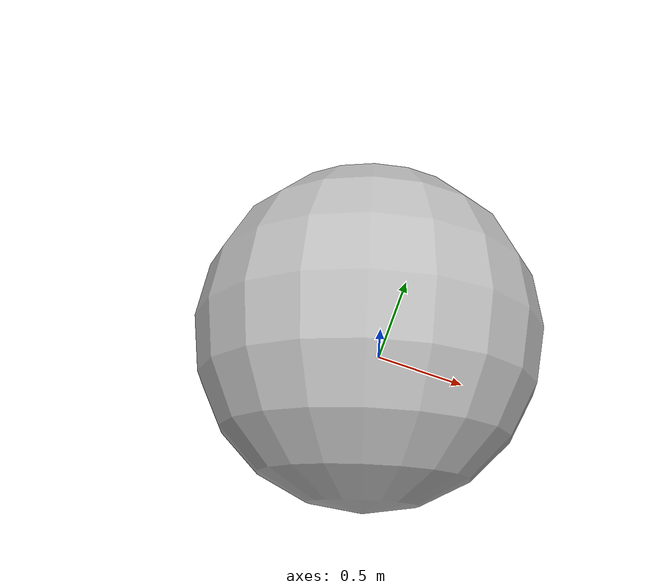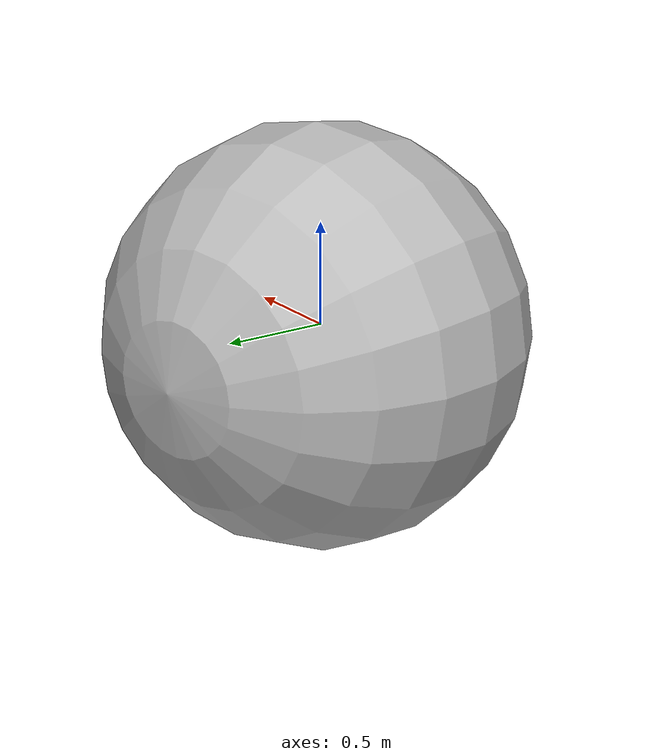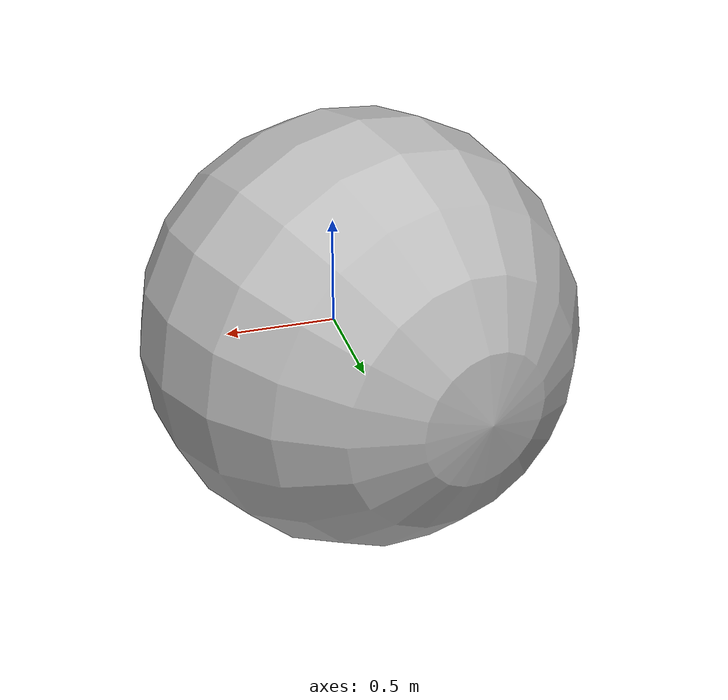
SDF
<?xml version="1.0" ?>
<!-- |    This document was autogenerated by xacro from jaco_bubble_picoflexx_paw_hydro.sdf.xacro | -->
<!-- |    EDITING THIS FILE BY HAND IS NOT RECOMMENDED                                 | -->
<sdf version="1.7" xmlns:drake="https://drake.mit.edu">
  <model name="jaco_bubble_picoflexx_paw">
    <link name="gripper">
      <inertial>
        <mass>0.001</mass>
      </inertial>
    </link>
    <link name="jaco_bubble_fist_body">
      <pose relative_to="gripper">0.0 0.0 0 0 0 0</pose>
      <inertial>
        <!-- Inertial values are approximate and calculated for a
               cylinder of radius 35mm, height 110mm and mass 270gms -->
        <pose>-0.05 0.07 0 1.5707 0 0.85</pose>
        <mass>0.27</mass>
        <inertia>
          <ixx>0.000355</ixx>
          <ixy>0</ixy>
          <ixz>0</ixz>
          <iyy>0.000355</iyy>
          <iyz>0</iyz>
          <izz>0.000165</izz>
        </inertia>
      </inertial>
      <visual name="base_visual">
        <pose>0 0 0 0 0 0</pose>
        <geometry>
          <mesh>
            <scale>1 1 1</scale>
            <uri>paw_combined_35mmbubble_5k.obj</uri>
          </mesh>
        </geometry>
        <material>
          <ambient>0.3 0.3 0.3 1</ambient>
          <diffuse>0.7 0.7 0.7 1</diffuse>
          <specular>0.001 0.001 0.001 1</specular>
          <emissive>0 0 0 1</emissive>
        </material>
      </visual>
      <visual name="base_bubble_ellipsoid_visual">
        <pose>-0.095 0.09 0 1.5707963267948966 0 0.3</pose>
        <geometry>
          <drake:ellipsoid>
            <a>0.04165</a>
            <b>0.04165</b>
            <c>0.0625</c>
          </drake:ellipsoid>
        </geometry>
      </visual>
      <collision name="base_bubble_ellipsoid">
        <pose>-0.095 0.09 0 1.5707963267948966 0 0.3</pose>
        <geometry>
          <!-- Ellipsoid dimensions along its principal axes set to match CAD
                   drawings. -->
          <drake:ellipsoid>
            <a>0.04165</a>
            <b>0.04165</b>
            <c>0.0625</c>
          </drake:ellipsoid>
        </geometry>
        <drake:proximity_properties>
          <drake:mesh_resolution_hint>0.04</drake:mesh_resolution_hint>
          <drake:compliant_hydroelastic/>
          <drake:hydroelastic_modulus>1e5</drake:hydroelastic_modulus>
          <drake:hunt_crossley_dissipation>5</drake:hunt_crossley_dissipation>
          <drake:mu_dynamic>0.9</drake:mu_dynamic>
          <drake:mu_static>0.9</drake:mu_static>
        </drake:proximity_properties>
      </collision>
    </link>
    <joint name="adapter_joint" type="fixed">
      <child>jaco_bubble_fist_body</child>
      <parent>gripper</parent>
    </joint>
    <frame name="bubble_base_center">
      <pose relative_to="gripper">-0.1 0.09 0 1.5707 0 1.91986</pose>
    </frame>
    <frame name="picoflexx_camera_center">
      <pose relative_to="gripper">-0.04685 0.06678 0 1.5707 0 4.45059</pose>
    </frame>
    <frame name="grasp_frame">
      <pose relative_to="bubble_base_center">0 0 0 0 0 0</pose>
    </frame>
  </model>
</sdf>
